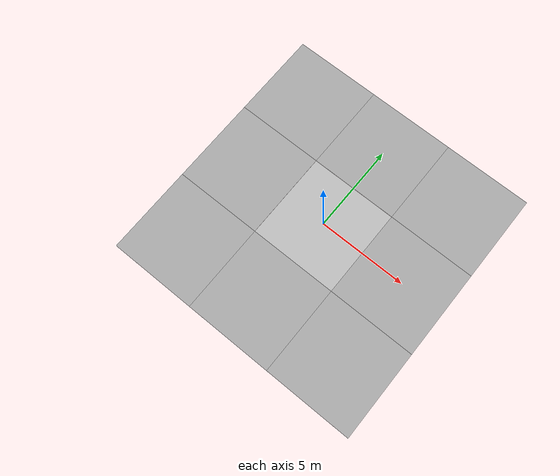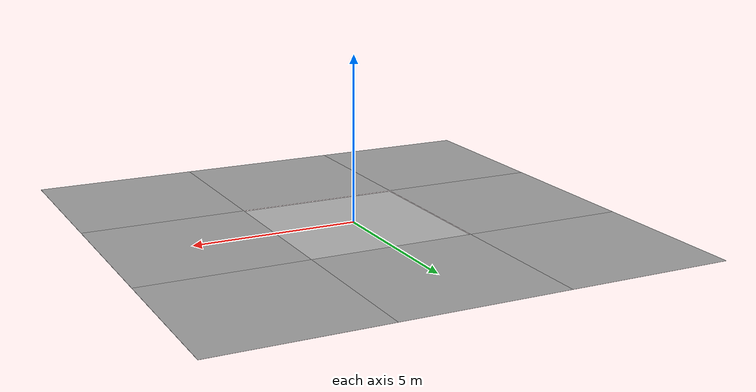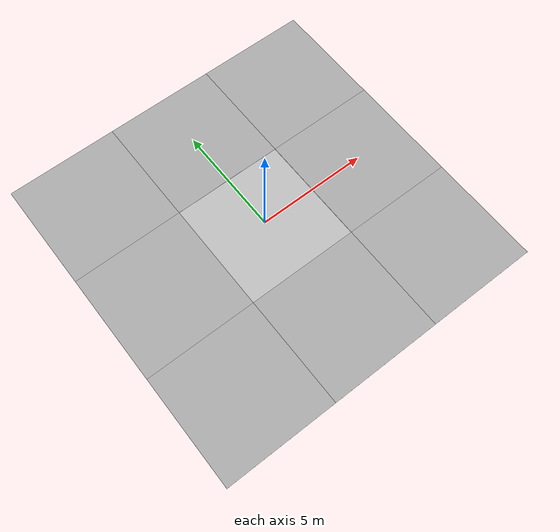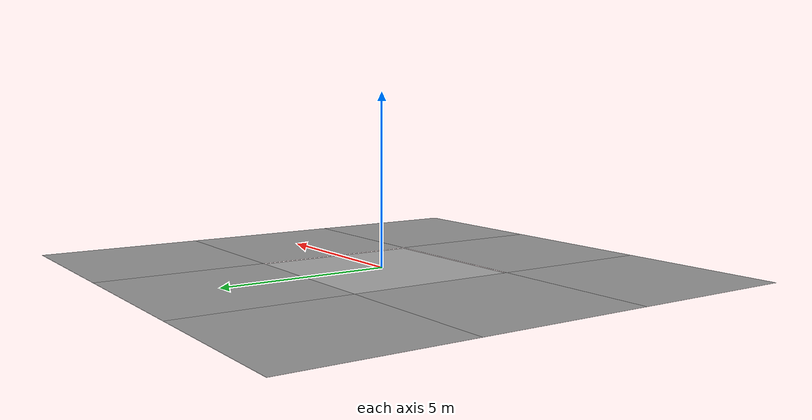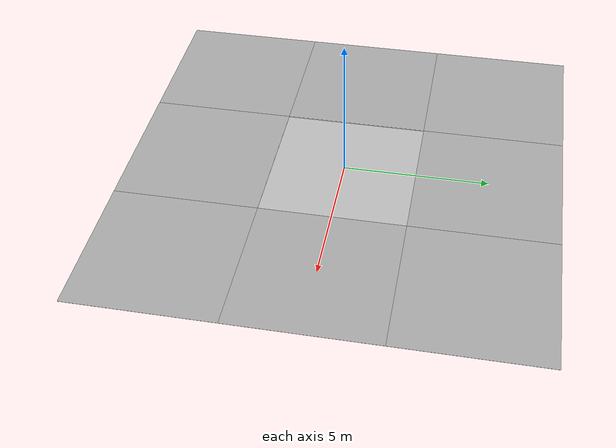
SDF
<sdf version='1.5'>
  <model name='plane_lidar'>
    <include>
      <uri>model://plane</uri>
    </include>

    <!--lidar-->
    <include>
      <uri>model://lidar</uri>
      <pose>0 0 -0.05 0 0 0</pose>
    </include>

    <joint name="lidar_joint" type="fixed">
      <parent>plane::base_link</parent>
      <child>lidar::link</child>
    </joint>
  </model>
</sdf>

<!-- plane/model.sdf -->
<sdf version='1.4'>
    <model name='plane'>
        <static>true</static>
        <link name='link'>

            <collision name='collision'>
                <geometry>
                    <plane>
                        <normal>0 0 1</normal>
                        <size>15 15</size>
                    </plane>
                </geometry>
                <surface>
                    <friction>
                        <ode>
                            <mu>100</mu>
                            <mu2>50</mu2>
                        </ode>
                    </friction>
                </surface>
            </collision>

            <visual name='visual_0'>
                <pose>0 0 0 0 0 0</pose>
                <cast_shadows>false</cast_shadows>
                <geometry>
                    <plane>
                        <normal>0 0 1</normal>
                        <size>5 5</size>
                    </plane>
                </geometry>
                <material>
                    <script>
                        <uri>model://plane/materials/scripts</uri>
                        <uri>model://plane/materials/textures</uri>
                        <name>vrc/pavement</name>
                    </script>
                </material>
            </visual>

            <visual name='visual_1'>
                <pose>0 5 0 0 0 0</pose>
                <cast_shadows>false</cast_shadows>
                <geometry>
                    <plane>
                        <normal>0 0 1</normal>
                        <size>5 5</size>
                    </plane>
                </geometry>
                <material>
                    <script>
                        <uri>model://plane/materials/scripts</uri>
                        <uri>model://plane/materials/textures</uri>
                        <name>vrc/pavement</name>
                    </script>
                </material>
            </visual>

            <visual name='visual_2'>
                <pose>0 -5 0 0 0 0</pose>
                <cast_shadows>false</cast_shadows>
                <geometry>
                    <plane>
                        <normal>0 0 1</normal>
                        <size>5 5</size>
                    </plane>
                </geometry>
                <material>
                    <script>
                        <uri>model://plane/materials/scripts</uri>
                        <uri>model://plane/materials/textures</uri>
                        <name>vrc/pavement</name>
                    </script>
                </material>
            </visual>

            <visual name='visual_3'>
                <pose>-5 -5 0 0 0 0</pose>
                <cast_shadows>false</cast_shadows>
                <geometry>
                    <plane>
                        <normal>0 0 1</normal>
                        <size>5 5</size>
                    </plane>
                </geometry>
                <material>
                    <script>
                        <uri>model://plane/materials/scripts</uri>
                        <uri>model://plane/materials/textures</uri>
                        <name>vrc/pavement</name>
                    </script>
                </material>
            </visual>

            <visual name='visual_4'>
                <pose>-5 0 0 0 0 0</pose>
                <cast_shadows>false</cast_shadows>
                <geometry>
                    <plane>
                        <normal>0 0 1</normal>
                        <size>5 5</size>
                    </plane>
                </geometry>
                <material>
                    <script>
                        <uri>model://plane/materials/scripts</uri>
                        <uri>model://plane/materials/textures</uri>
                        <name>vrc/pavement</name>
                    </script>
                </material>
            </visual>

            <visual name='visual_5'>
                <pose>-5 5 0 0 0 0</pose>
                <cast_shadows>false</cast_shadows>
                <geometry>
                    <plane>
                        <normal>0 0 1</normal>
                        <size>5 5</size>
                    </plane>
                </geometry>
                <material>
                    <script>
                        <uri>model://plane/materials/scripts</uri>
                        <uri>model://plane/materials/textures</uri>
                        <name>vrc/pavement</name>
                    </script>
                </material>
            </visual>

            <visual name='visual_6'>
                <pose>5 -5 0 0 0 0</pose>
                <cast_shadows>false</cast_shadows>
                <geometry>
                    <plane>
                        <normal>0 0 1</normal>
                        <size>5 5</size>
                    </plane>
                </geometry>
                <material>
                    <script>
                        <uri>model://plane/materials/scripts</uri>
                        <uri>model://plane/materials/textures</uri>
                        <name>vrc/pavement</name>
                    </script>
                </material>
            </visual>

            <visual name='visual_7'>
                <pose>5 0 0 0 0 0</pose>
                <cast_shadows>false</cast_shadows>
                <geometry>
                    <plane>
                        <normal>0 0 1</normal>
                        <size>5 5</size>
                    </plane>
                </geometry>
                <material>
                    <script>
                        <uri>model://plane/materials/scripts</uri>
                        <uri>model://plane/materials/textures</uri>
                        <name>vrc/pavement</name>
                    </script>
                </material>
            </visual>

            <visual name='visual_8'>
                <pose>5 5 0 0 0 0</pose>
                <cast_shadows>false</cast_shadows>
                <geometry>
                    <plane>
                        <normal>0 0 1</normal>
                        <size>5 5</size>
                    </plane>
                </geometry>
                <material>
                    <script>
                        <uri>model://plane/materials/scripts</uri>
                        <uri>model://plane/materials/textures</uri>
                        <name>vrc/pavement</name>
                    </script>
                </material>
            </visual>

        </link>
    </model>
</sdf>

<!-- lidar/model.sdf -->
<sdf version="1.4">
  <model name="lidar">
    <link name="link">
      <pose>0 0 0 0 0 0</pose>
      <inertial>
        <pose>0 0 0 0 0 0</pose>
        <mass>0.01</mass>
        <inertia>
          <ixx>2.1733e-6</ixx>
          <ixy>0</ixy>
          <ixz>0</ixz>
          <iyy>2.1733e-6</iyy>
          <iyz>0</iyz>
          <izz>1.8e-7</izz>
        </inertia>
      </inertial>
      <visual name="visual">
        <geometry>
          <cylinder><radius>0.006</radius><length>0.05</length></cylinder>
        </geometry>
        <material>
          <script>
            <name>Gazebo/Black</name>
          </script>
        </material>
      </visual>
      <sensor name="laser" type="ray">
        <pose>0 0 0.0 0 1.57079633 0</pose>
        <ray>
          <scan>
            <horizontal>
              <samples>1</samples>
              <resolution>1</resolution>
              <min_angle>-0</min_angle>
              <max_angle>0</max_angle>
            </horizontal>
          </scan>
          <range>
            <min>0.06</min> <!-- do not change: use min_distance (below) for realistic behavior (smaller values cause issues) 0.2 -0.195-->
            <max>35</max>   <!-- do not change: use min_distance (below) for realistic behavior (bigger values cause issues) 15.0 -->
            <resolution>0.01</resolution>
          </range>
          <noise>
            <type>gaussian</type>
            <mean>0.0</mean>
            <stddev>0.02</stddev>
          </noise>
        </ray>
        <plugin name="LaserPlugin" filename="libgazebo_lidar_plugin.so">
          <robotNamespace></robotNamespace>
          <min_distance>0.08</min_distance>
          <max_distance>30.0</max_distance>
        </plugin>
        <always_on>1</always_on>
        <update_rate>20</update_rate>
        <visualize>true</visualize>
      </sensor>
    </link>
  </model>
</sdf>
